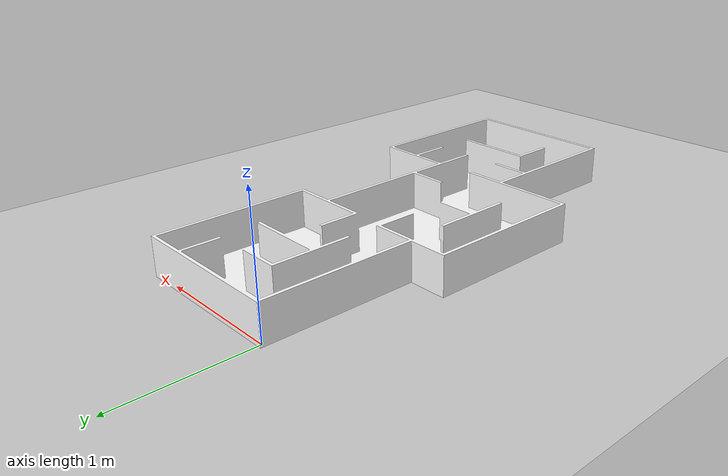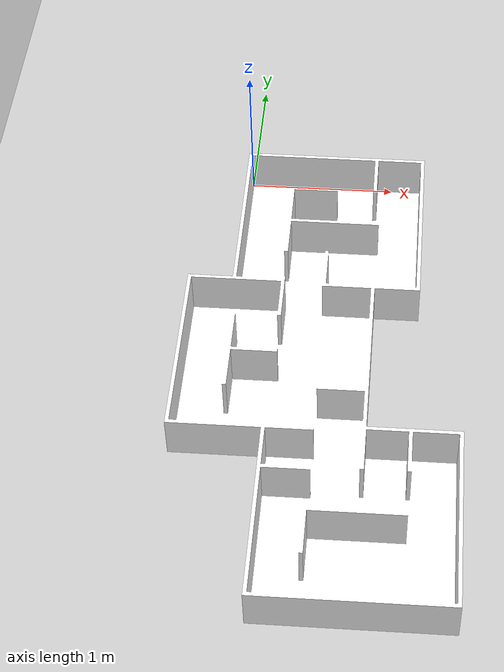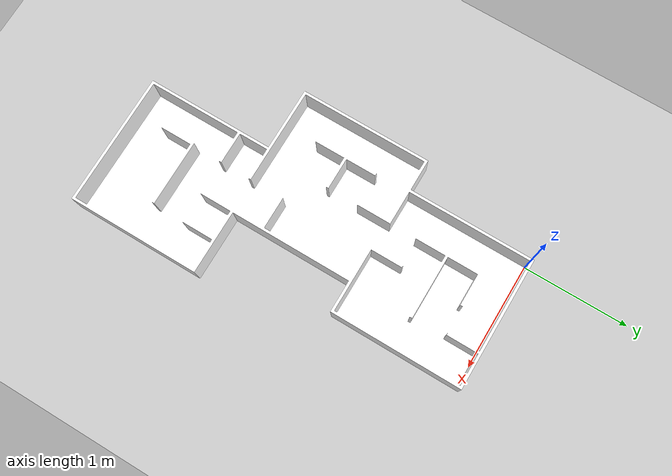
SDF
<?xml version="1.0"?>
<sdf version="1.6">
  <world name="default">

    <include>
      <uri>model://ground_plane</uri>
    </include>

    <include>
      <uri>model://sun</uri>
    </include>

    <scene>
      <shadows>false</shadows>
    </scene>

    <include>
      <uri>model://rcj_maze1</uri>
    </include>

    <gui fullscreen='0'>
      <camera name='user_camera'>
        <pose frame=''>0.319654 -0.235002 9.29441 0 1.5138 0.009599</pose>
        <view_controller>orbit</view_controller>
        <projection_type>perspective</projection_type>
      </camera>
    </gui>

  </world>
</sdf>

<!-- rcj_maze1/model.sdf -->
<sdf version='1.7'>
  <model name='rcj_maze1'>
      <pose>0.30 -3.6 0.001 0 0 0</pose>
      <static>true</static>
      <link name='link'>
        <inertial>
          <pose>0 0 0 0 0 1.57</pose>
          <scale>1.0 1.0 1.0</scale>
        </inertial>
        <collision name='collision'>
          <geometry>
            <mesh>
              <scale>1.0 1.0 1.0</scale>
              <uri>model://rcj_maze1/rcj_maze1.dae</uri>
            </mesh>
          </geometry>
          <max_contacts>1000</max_contacts>
          <surface>
          </surface>
        </collision>
        <visual name='visual'>
          <geometry>
            <mesh>
              <scale>1.0 1.0 1.0</scale>
              <uri>model://rcj_maze1/rcj_maze1.dae</uri>
            </mesh>
          </geometry>
        </visual>
        <self_collide>0</self_collide>
        <inertial>
          <pose>0 0 0 0 -0 0</pose>
          <inertia>
          </inertia>
          <mass>1</mass>
        </inertial>
        <enable_wind>0</enable_wind>
        <kinematic>0</kinematic>
      </link>
  </model>
</sdf>
